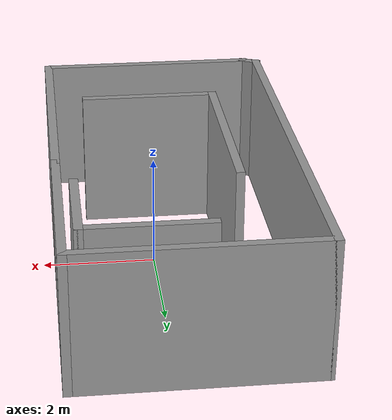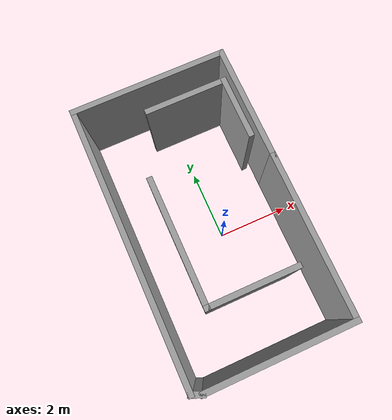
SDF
<?xml version='1.0'?>
<sdf version='1.7'>
  <model name='maze'>
    <pose>-0.331245 0.273755 0 0 -0 0</pose>
    <link name='Wall_11'>
      <collision name='Wall_11_Collision'>
        <geometry>
          <box>
            <size>2.25 0.15 2.5</size>
          </box>
        </geometry>
        <pose>0 0 1.25 0 -0 0</pose>
      </collision>
      <visual name='Wall_11_Visual'>
        <pose>0 0 1.25 0 -0 0</pose>
        <geometry>
          <box>
            <size>2.25 0.15 2.5</size>
          </box>
        </geometry>
        <material>
          <script>
            <uri>file://media/materials/scripts/gazebo.material</uri>
            <name>Gazebo/Grey</name>
          </script>
          <ambient>1 1 1 1</ambient>
        </material>
        <meta>
          <layer>0</layer>
        </meta>
      </visual>
      <pose>0.739689 2.99063 0 0 -0 0</pose>
    </link>
    <link name='Wall_12'>
      <collision name='Wall_12_Collision'>
        <geometry>
          <box>
            <size>1.75 0.15 2.5</size>
          </box>
        </geometry>
        <pose>0 0 1.25 0 -0 0</pose>
      </collision>
      <visual name='Wall_12_Visual'>
        <pose>0 0 1.25 0 -0 0</pose>
        <geometry>
          <box>
            <size>1.75 0.15 2.5</size>
          </box>
        </geometry>
        <material>
          <script>
            <uri>file://media/materials/scripts/gazebo.material</uri>
            <name>Gazebo/Grey</name>
          </script>
          <ambient>1 1 1 1</ambient>
        </material>
        <meta>
          <layer>0</layer>
        </meta>
      </visual>
      <pose>1.78969 2.19063 0 0 -0 -1.5708</pose>
    </link>
    <link name='Wall_14'>
      <collision name='Wall_14_Collision'>
        <geometry>
          <box>
            <size>2.5 0.15 2.5</size>
          </box>
        </geometry>
        <pose>0 0 1.25 0 -0 0</pose>
      </collision>
      <visual name='Wall_14_Visual'>
        <pose>0 0 1.25 0 -0 0</pose>
        <geometry>
          <box>
            <size>2.5 0.15 2.5</size>
          </box>
        </geometry>
        <material>
          <script>
            <uri>file://media/materials/scripts/gazebo.material</uri>
            <name>Gazebo/Grey</name>
          </script>
          <ambient>1 1 1 1</ambient>
        </material>
        <meta>
          <layer>0</layer>
        </meta>
      </visual>
      <pose>0.226354 -2.05184 0 0 -0 3.14159</pose>
    </link>
    <link name='Wall_15'>
      <collision name='Wall_15_Collision'>
        <geometry>
          <box>
            <size>3.5 0.15 2.5</size>
          </box>
        </geometry>
        <pose>0 0 1.25 0 -0 0</pose>
      </collision>
      <visual name='Wall_15_Visual'>
        <pose>0 0 1.25 0 -0 0</pose>
        <geometry>
          <box>
            <size>3.5 0.15 2.5</size>
          </box>
        </geometry>
        <material>
          <script>
            <uri>file://media/materials/scripts/gazebo.material</uri>
            <name>Gazebo/Grey</name>
          </script>
          <ambient>1 1 1 1</ambient>
        </material>
        <meta>
          <layer>0</layer>
        </meta>
      </visual>
      <pose>-0.948646 -0.376841 0 0 -0 1.5708</pose>
    </link>
    <link name='Wall_3'>
      <collision name='Wall_3_Collision'>
        <geometry>
          <box>
            <size>4 0.15 2.5</size>
          </box>
        </geometry>
        <pose>0 0 1.25 0 -0 0</pose>
      </collision>
      <visual name='Wall_3_Visual'>
        <pose>0 0 1.25 0 -0 0</pose>
        <geometry>
          <box>
            <size>4 0.15 2.5</size>
          </box>
        </geometry>
        <material>
          <script>
            <uri>file://media/materials/scripts/gazebo.material</uri>
            <name>Gazebo/Grey</name>
          </script>
          <ambient>1 1 1 1</ambient>
        </material>
        <meta>
          <layer>0</layer>
        </meta>
      </visual>
      <pose>0.136245 -3.71375 0 0 -0 0</pose>
    </link>
    <link name='Wall_4'>
      <collision name='Wall_4_Collision'>
        <geometry>
          <box>
            <size>4.5 0.15 2.5</size>
          </box>
        </geometry>
        <pose>0 0 1.25 0 -0 0</pose>
      </collision>
      <visual name='Wall_4_Visual'>
        <pose>0 0 1.25 0 -0 0</pose>
        <geometry>
          <box>
            <size>4.5 0.15 2.5</size>
          </box>
        </geometry>
        <material>
          <script>
            <uri>file://media/materials/scripts/gazebo.material</uri>
            <name>Gazebo/Grey</name>
          </script>
          <ambient>1 1 1 1</ambient>
        </material>
        <meta>
          <layer>0</layer>
        </meta>
      </visual>
      <pose>2.06124 -1.53876 0 0 -0 1.5708</pose>
    </link>
    <link name='Wall_6'>
      <collision name='Wall_6_Collision'>
        <geometry>
          <box>
            <size>3.25 0.15 2.5</size>
          </box>
        </geometry>
        <pose>0 0 1.25 0 -0 0</pose>
      </collision>
      <visual name='Wall_6_Visual'>
        <pose>0 0 1.25 0 -0 0</pose>
        <geometry>
          <box>
            <size>3.25 0.15 2.5</size>
          </box>
        </geometry>
        <material>
          <script>
            <uri>file://media/materials/scripts/gazebo.material</uri>
            <name>Gazebo/Grey</name>
          </script>
          <ambient>1 1 1 1</ambient>
        </material>
        <meta>
          <layer>0</layer>
        </meta>
      </visual>
      <pose>2.06124 2.18624 0 0 -0 1.5708</pose>
    </link>
    <link name='Wall_7'>
      <collision name='Wall_7_Collision'>
        <geometry>
          <box>
            <size>4.25 0.15 2.5</size>
          </box>
        </geometry>
        <pose>0 0 1.25 0 -0 0</pose>
      </collision>
      <visual name='Wall_7_Visual'>
        <pose>0 0 1.25 0 -0 0</pose>
        <geometry>
          <box>
            <size>4.25 0.15 2.5</size>
          </box>
        </geometry>
        <material>
          <script>
            <uri>file://media/materials/scripts/gazebo.material</uri>
            <name>Gazebo/Grey</name>
          </script>
          <ambient>1 1 1 1</ambient>
        </material>
        <meta>
          <layer>0</layer>
        </meta>
      </visual>
      <pose>0.011245 3.73624 0 0 -0 3.14159</pose>
    </link>
    <link name='Wall_8'>
      <collision name='Wall_8_Collision'>
        <geometry>
          <box>
            <size>7.5 0.15 2.5</size>
          </box>
        </geometry>
        <pose>0 0 1.25 0 -0 0</pose>
      </collision>
      <visual name='Wall_8_Visual'>
        <pose>0 0 1.25 0 -0 0</pose>
        <geometry>
          <box>
            <size>7.5 0.15 2.5</size>
          </box>
        </geometry>
        <material>
          <script>
            <uri>file://media/materials/scripts/gazebo.material</uri>
            <name>Gazebo/Grey</name>
          </script>
          <ambient>1 1 1 1</ambient>
        </material>
        <meta>
          <layer>0</layer>
        </meta>
      </visual>
      <pose>-2.03876 0.061245 0 0 -0 -1.5708</pose>
    </link>
    <link name='Wall_9'>
      <collision name='Wall_9_Collision'>
        <geometry>
          <box>
            <size>0.419258 0.15 2.5</size>
          </box>
        </geometry>
        <pose>0 0 1.25 0 -0 0</pose>
      </collision>
      <visual name='Wall_9_Visual'>
        <pose>0 0 1.25 0 -0 0</pose>
        <geometry>
          <box>
            <size>0.419258 0.15 2.5</size>
          </box>
        </geometry>
        <material>
          <script>
            <uri>file://media/materials/scripts/gazebo.material</uri>
            <name>Gazebo/Grey</name>
          </script>
          <ambient>1 1 1 1</ambient>
        </material>
        <meta>
          <layer>0</layer>
        </meta>
      </visual>
      <pose>-1.91376 -3.66376 0 0 -0 -0.380506</pose>
    </link>
    <static>1</static>
  </model>
</sdf>
